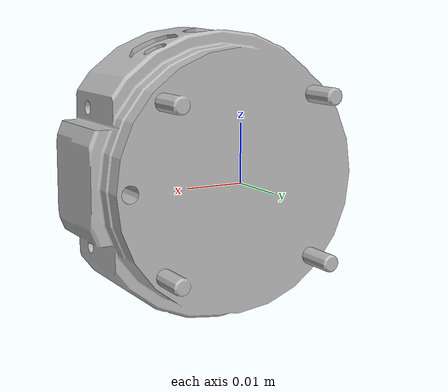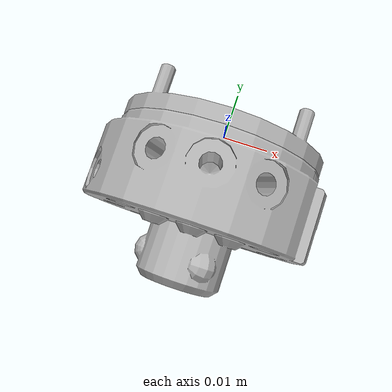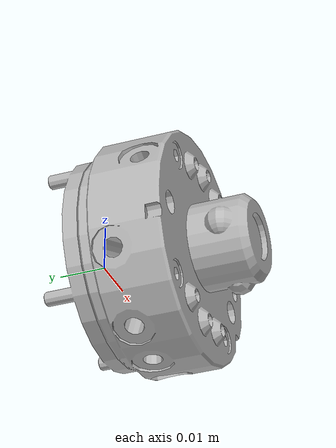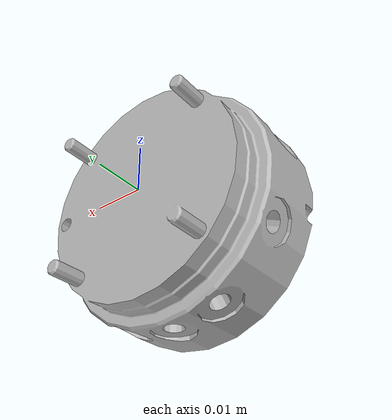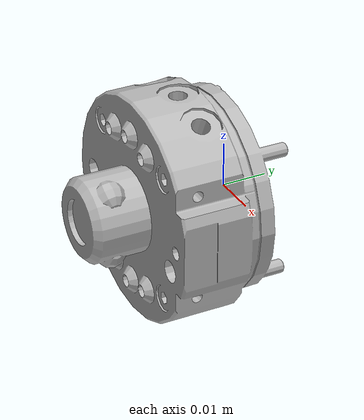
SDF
<?xml version="1.0" ?>
<sdf version="1.6">
  <model name="robot_side">
    <link name="tool_mount">
      <inertial>
        <mass>0.23170504236087314</mass>
        <pose>  1.7381693723e-06 -1.2078454606e-02  1.0968082327e-05 0 0 0 </pose>
        <inertia>
            <ixx>  4.7087914472e-05 </ixx>
            <ixy>  2.9688550775e-09 </ixy>
            <ixz> -4.4471234162e-08 </ixz>
            <iyy>  6.7356053048e-05 </iyy>
            <iyz>  1.8736423946e-08 </iyz>
            <izz>  4.6814177648e-05 </izz>
        </inertia>
      </inertial>
      <collision name="tool_mount_collision">
        <geometry>
          <mesh>
            <uri>model://robot_side/meshes/collision_robot_side.stl</uri>
          </mesh>
        </geometry>
      </collision>
      <visual name="tool_mount_visual">
	    <geometry>
          <mesh>
            <uri>model://robot_side/meshes/visual_robot_side.dae</uri>
          </mesh>
        </geometry>
      </visual>
    </link>
  </model>
</sdf>
